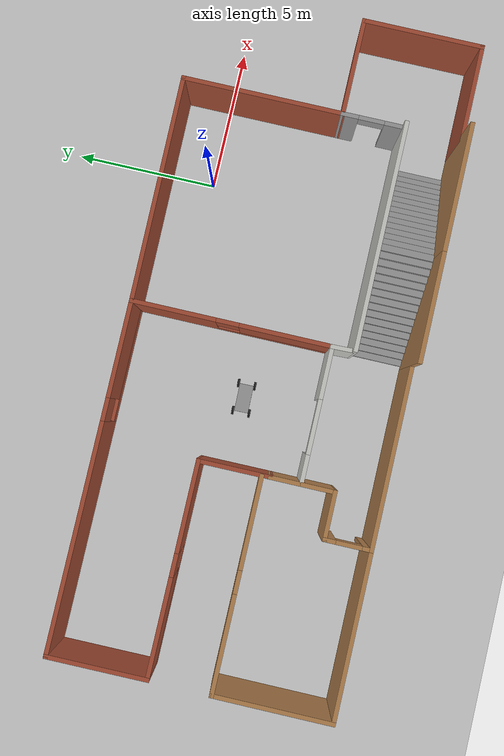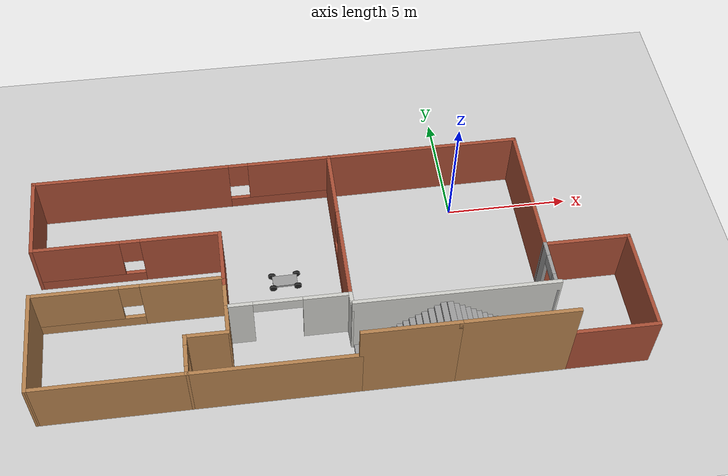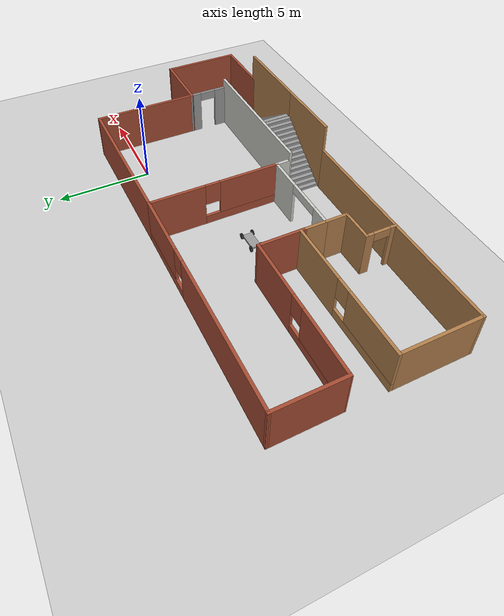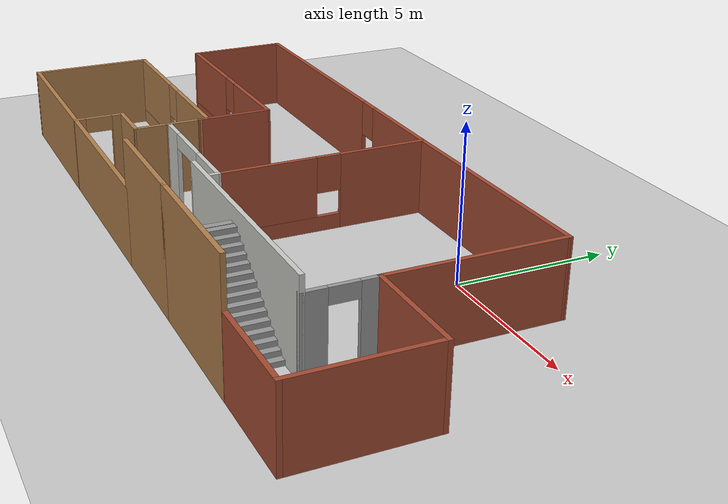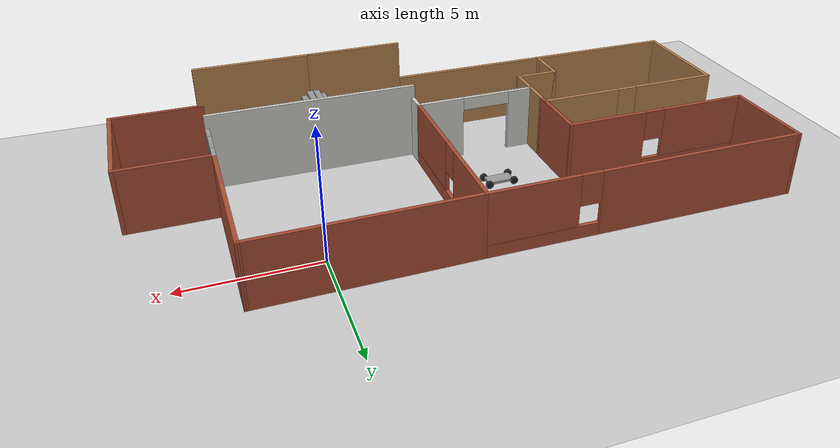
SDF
<sdf version="1.6">
 <world name="default">
  <model name="ground_plane">
   <static>1</static>
   <link name="link">
    <collision name="collision">
     <geometry><plane><normal>0 0 1</normal><size>100 100</size></plane></geometry>
     <surface>
      <contact><collide_bitmask>65535</collide_bitmask></contact>
      <friction><ode><mu>100</mu><mu2>50</mu2></ode></friction>
     </surface>
    </collision>
    <visual name="visual">
     <cast_shadows>0</cast_shadows>
     <geometry><plane><normal>0 0 1</normal><size>100 100</size></plane></geometry>
     <material>
      <script><uri>file://media/materials/scripts/gazebo.material</uri><name>Gazebo/Grey</name></script>
     </material>
    </visual>
   </link>
  </model>
  <model name="robot_house_space">
   <pose>-5.45028 -3.2823 0 0 -0 0</pose>
   <link name="Stairs_1">
    <visual name="Stairs_1_Visual_0">
     <pose>0.620829 -3.92142 0.083333 0 -0 1.5708</pose>
     <geometry><box><size>1.97481 0.231333 0.166667</size></box></geometry>
     <material>
      <script><uri>file://media/materials/scripts/gazebo.material</uri><name>Gazebo/Grey</name></script>
      <ambient>1 1 1 1</ambient>
     </material>
     <meta><layer>0</layer></meta>
    </visual>
    <collision name="Stairs_1_Collision_0">
     <geometry><box><size>1.97481 0.231333 0.166667</size></box></geometry>
     <pose>0.620829 -3.92142 0.083333 0 -0 1.5708</pose>
    </collision>
    <visual name="Stairs_1_Visual_1">
     <pose>0.852162 -3.92142 0.25 0 -0 1.5708</pose>
     <geometry><box><size>1.97481 0.231333 0.166667</size></box></geometry>
     <material>
      <script><uri>file://media/materials/scripts/gazebo.material</uri><name>Gazebo/Grey</name></script>
      <ambient>1 1 1 1</ambient>
     </material>
     <meta><layer>0</layer></meta>
    </visual>
    <collision name="Stairs_1_Collision_1">
     <geometry><box><size>1.97481 0.231333 0.166667</size></box></geometry>
     <pose>0.852162 -3.92142 0.25 0 -0 1.5708</pose>
    </collision>
    <visual name="Stairs_1_Visual_2">
     <pose>1.0835 -3.92142 0.416667 0 -0 1.5708</pose>
     <geometry><box><size>1.97481 0.231333 0.166667</size></box></geometry>
     <material>
      <script><uri>file://media/materials/scripts/gazebo.material</uri><name>Gazebo/Grey</name></script>
      <ambient>1 1 1 1</ambient>
     </material>
     <meta><layer>0</layer></meta>
    </visual>
    <collision name="Stairs_1_Collision_2">
     <geometry><box><size>1.97481 0.231333 0.166667</size></box></geometry>
     <pose>1.0835 -3.92142 0.416667 0 -0 1.5708</pose>
    </collision>
    <visual name="Stairs_1_Visual_3">
     <pose>1.31483 -3.92142 0.583333 0 -0 1.5708</pose>
     <geometry><box><size>1.97481 0.231333 0.166667</size></box></geometry>
     <material>
      <script><uri>file://media/materials/scripts/gazebo.material</uri><name>Gazebo/Grey</name></script>
      <ambient>1 1 1 1</ambient>
     </material>
     <meta><layer>0</layer></meta>
    </visual>
    <collision name="Stairs_1_Collision_3">
     <geometry><box><size>1.97481 0.231333 0.166667</size></box></geometry>
     <pose>1.31483 -3.92142 0.583333 0 -0 1.5708</pose>
    </collision>
    <visual name="Stairs_1_Visual_4">
     <pose>1.54616 -3.92142 0.75 0 -0 1.5708</pose>
     <geometry><box><size>1.97481 0.231333 0.166667</size></box></geometry>
     <material>
      <script><uri>file://media/materials/scripts/gazebo.material</uri><name>Gazebo/Grey</name></script>
      <ambient>1 1 1 1</ambient>
     </material>
     <meta><layer>0</layer></meta>
    </visual>
    <collision name="Stairs_1_Collision_4">
     <geometry><box><size>1.97481 0.231333 0.166667</size></box></geometry>
     <pose>1.54616 -3.92142 0.75 0 -0 1.5708</pose>
    </collision>
    <visual name="Stairs_1_Visual_5">
     <pose>1.7775 -3.92142 0.916667 0 -0 1.5708</pose>
     <geometry><box><size>1.97481 0.231333 0.166667</size></box></geometry>
     <material>
      <script><uri>file://media/materials/scripts/gazebo.material</uri><name>Gazebo/Grey</name></script>
      <ambient>1 1 1 1</ambient>
     </material>
     <meta><layer>0</layer></meta>
    </visual>
    <collision name="Stairs_1_Collision_5">
     <geometry><box><size>1.97481 0.231333 0.166667</size></box></geometry>
     <pose>1.7775 -3.92142 0.916667 0 -0 1.5708</pose>
    </collision>
    <visual name="Stairs_1_Visual_6">
     <pose>2.00883 -3.92142 1.08333 0 -0 1.5708</pose>
     <geometry><box><size>1.97481 0.231333 0.166667</size></box></geometry>
     <material>
      <script><uri>file://media/materials/scripts/gazebo.material</uri><name>Gazebo/Grey</name></script>
      <ambient>1 1 1 1</ambient>
     </material>
     <meta><layer>0</layer></meta>
    </visual>
    <collision name="Stairs_1_Collision_6">
     <geometry><box><size>1.97481 0.231333 0.166667</size></box></geometry>
     <pose>2.00883 -3.92142 1.08333 0 -0 1.5708</pose>
    </collision>
    <visual name="Stairs_1_Visual_7">
     <pose>2.24016 -3.92142 1.25 0 -0 1.5708</pose>
     <geometry><box><size>1.97481 0.231333 0.166667</size></box></geometry>
     <material>
      <script><uri>file://media/materials/scripts/gazebo.material</uri><name>Gazebo/Grey</name></script>
      <ambient>1 1 1 1</ambient>
     </material>
     <meta><layer>0</layer></meta>
    </visual>
    <collision name="Stairs_1_Collision_7">
     <geometry><box><size>1.97481 0.231333 0.166667</size></box></geometry>
     <pose>2.24016 -3.92142 1.25 0 -0 1.5708</pose>
    </collision>
    <visual name="Stairs_1_Visual_8">
     <pose>2.4715 -3.92142 1.41667 0 -0 1.5708</pose>
     <geometry><box><size>1.97481 0.231333 0.166667</size></box></geometry>
     <material>
      <script><uri>file://media/materials/scripts/gazebo.material</uri><name>Gazebo/Grey</name></script>
      <ambient>1 1 1 1</ambient>
     </material>
     <meta><layer>0</layer></meta>
    </visual>
    <collision name="Stairs_1_Collision_8">
     <geometry><box><size>1.97481 0.231333 0.166667</size></box></geometry>
     <pose>2.4715 -3.92142 1.41667 0 -0 1.5708</pose>
    </collision>
    <visual name="Stairs_1_Visual_9">
     <pose>2.70283 -3.92142 1.58333 0 -0 1.5708</pose>
     <geometry><box><size>1.97481 0.231333 0.166667</size></box></geometry>
     <material>
      <script><uri>file://media/materials/scripts/gazebo.material</uri><name>Gazebo/Grey</name></script>
      <ambient>1 1 1 1</ambient>
     </material>
     <meta><layer>0</layer></meta>
    </visual>
    <collision name="Stairs_1_Collision_9">
     <geometry><box><size>1.97481 0.231333 0.166667</size></box></geometry>
     <pose>2.70283 -3.92142 1.58333 0 -0 1.5708</pose>
    </collision>
    <visual name="Stairs_1_Visual_10">
     <pose>2.93416 -3.92142 1.75 0 -0 1.5708</pose>
     <geometry><box><size>1.97481 0.231333 0.166667</size></box></geometry>
     <material>
      <script><uri>file://media/materials/scripts/gazebo.material</uri><name>Gazebo/Grey</name></script>
      <ambient>1 1 1 1</ambient>
     </material>
     <meta><layer>0</layer></meta>
    </visual>
    <collision name="Stairs_1_Collision_10">
     <geometry><box><size>1.97481 0.231333 0.166667</size></box></geometry>
     <pose>2.93416 -3.92142 1.75 0 -0 1.5708</pose>
    </collision>
    <visual name="Stairs_1_Visual_11">
     <pose>3.1655 -3.92142 1.91667 0 -0 1.5708</pose>
     <geometry><box><size>1.97481 0.231333 0.166667</size></box></geometry>
     <material>
      <script><uri>file://media/materials/scripts/gazebo.material</uri><name>Gazebo/Grey</name></script>
      <ambient>1 1 1 1</ambient>
     </material>
     <meta><layer>0</layer></meta>
    </visual>
    <collision name="Stairs_1_Collision_11">
     <geometry><box><size>1.97481 0.231333 0.166667</size></box></geometry>
     <pose>3.1655 -3.92142 1.91667 0 -0 1.5708</pose>
    </collision>
    <visual name="Stairs_1_Visual_12">
     <pose>3.39683 -3.92142 2.08333 0 -0 1.5708</pose>
     <geometry><box><size>1.97481 0.231333 0.166667</size></box></geometry>
     <material>
      <script><uri>file://media/materials/scripts/gazebo.material</uri><name>Gazebo/Grey</name></script>
      <ambient>1 1 1 1</ambient>
     </material>
     <meta><layer>0</layer></meta>
    </visual>
    <collision name="Stairs_1_Collision_12">
     <geometry><box><size>1.97481 0.231333 0.166667</size></box></geometry>
     <pose>3.39683 -3.92142 2.08333 0 -0 1.5708</pose>
    </collision>
    <visual name="Stairs_1_Visual_13">
     <pose>3.62816 -3.92142 2.25 0 -0 1.5708</pose>
     <geometry><box><size>1.97481 0.231333 0.166667</size></box></geometry>
     <material>
      <script><uri>file://media/materials/scripts/gazebo.material</uri><name>Gazebo/Grey</name></script>
      <ambient>1 1 1 1</ambient>
     </material>
     <meta><layer>0</layer></meta>
    </visual>
    <collision name="Stairs_1_Collision_13">
     <geometry><box><size>1.97481 0.231333 0.166667</size></box></geometry>
     <pose>3.62816 -3.92142 2.25 0 -0 1.5708</pose>
    </collision>
    <visual name="Stairs_1_Visual_14">
     <pose>3.8595 -3.92142 2.41667 0 -0 1.5708</pose>
     <geometry><box><size>1.97481 0.231333 0.166667</size></box></geometry>
     <material>
      <script><uri>file://media/materials/scripts/gazebo.material</uri><name>Gazebo/Grey</name></script>
      <ambient>1 1 1 1</ambient>
     </material>
     <meta><layer>0</layer></meta>
    </visual>
    <collision name="Stairs_1_Collision_14">
     <geometry><box><size>1.97481 0.231333 0.166667</size></box></geometry>
     <pose>3.8595 -3.92142 2.41667 0 -0 1.5708</pose>
    </collision>
   </link>
   <link name="Stairs_2">
    <visual name="Stairs_2_Visual_0">
     <pose>7.38463 -3.89067 0.083333 0 -0 -1.5708</pose>
     <geometry><box><size>1.8856 0.233333 0.166667</size></box></geometry>
     <material>
      <script><uri>file://media/materials/scripts/gazebo.material</uri><name>Gazebo/Grey</name></script>
      <ambient>1 1 1 1</ambient>
     </material>
     <meta><layer>0</layer></meta>
    </visual>
    <collision name="Stairs_2_Collision_0">
     <geometry><box><size>1.8856 0.233333 0.166667</size></box></geometry>
     <pose>7.38463 -3.89067 0.083333 0 -0 -1.5708</pose>
    </collision>
    <visual name="Stairs_2_Visual_1">
     <pose>7.15129 -3.89067 0.25 0 -0 -1.5708</pose>
     <geometry><box><size>1.8856 0.233333 0.166667</size></box></geometry>
     <material>
      <script><uri>file://media/materials/scripts/gazebo.material</uri><name>Gazebo/Grey</name></script>
      <ambient>1 1 1 1</ambient>
     </material>
     <meta><layer>0</layer></meta>
    </visual>
    <collision name="Stairs_2_Collision_1">
     <geometry><box><size>1.8856 0.233333 0.166667</size></box></geometry>
     <pose>7.15129 -3.89067 0.25 0 -0 -1.5708</pose>
    </collision>
    <visual name="Stairs_2_Visual_2">
     <pose>6.91796 -3.89067 0.416667 0 -0 -1.5708</pose>
     <geometry><box><size>1.8856 0.233333 0.166667</size></box></geometry>
     <material>
      <script><uri>file://media/materials/scripts/gazebo.material</uri><name>Gazebo/Grey</name></script>
      <ambient>1 1 1 1</ambient>
     </material>
     <meta><layer>0</layer></meta>
    </visual>
    <collision name="Stairs_2_Collision_2">
     <geometry><box><size>1.8856 0.233333 0.166667</size></box></geometry>
     <pose>6.91796 -3.89067 0.416667 0 -0 -1.5708</pose>
    </collision>
    <visual name="Stairs_2_Visual_3">
     <pose>6.68463 -3.89067 0.583333 0 -0 -1.5708</pose>
     <geometry><box><size>1.8856 0.233333 0.166667</size></box></geometry>
     <material>
      <script><uri>file://media/materials/scripts/gazebo.material</uri><name>Gazebo/Grey</name></script>
      <ambient>1 1 1 1</ambient>
     </material>
     <meta><layer>0</layer></meta>
    </visual>
    <collision name="Stairs_2_Collision_3">
     <geometry><box><size>1.8856 0.233333 0.166667</size></box></geometry>
     <pose>6.68463 -3.89067 0.583333 0 -0 -1.5708</pose>
    </collision>
    <visual name="Stairs_2_Visual_4">
     <pose>6.45129 -3.89067 0.75 0 -0 -1.5708</pose>
     <geometry><box><size>1.8856 0.233333 0.166667</size></box></geometry>
     <material>
      <script><uri>file://media/materials/scripts/gazebo.material</uri><name>Gazebo/Grey</name></script>
      <ambient>1 1 1 1</ambient>
     </material>
     <meta><layer>0</layer></meta>
    </visual>
    <collision name="Stairs_2_Collision_4">
     <geometry><box><size>1.8856 0.233333 0.166667</size></box></geometry>
     <pose>6.45129 -3.89067 0.75 0 -0 -1.5708</pose>
    </collision>
    <visual name="Stairs_2_Visual_5">
     <pose>6.21796 -3.89067 0.916667 0 -0 -1.5708</pose>
     <geometry><box><size>1.8856 0.233333 0.166667</size></box></geometry>
     <material>
      <script><uri>file://media/materials/scripts/gazebo.material</uri><name>Gazebo/Grey</name></script>
      <ambient>1 1 1 1</ambient>
     </material>
     <meta><layer>0</layer></meta>
    </visual>
    <collision name="Stairs_2_Collision_5">
     <geometry><box><size>1.8856 0.233333 0.166667</size></box></geometry>
     <pose>6.21796 -3.89067 0.916667 0 -0 -1.5708</pose>
    </collision>
    <visual name="Stairs_2_Visual_6">
     <pose>5.98463 -3.89067 1.08333 0 -0 -1.5708</pose>
     <geometry><box><size>1.8856 0.233333 0.166667</size></box></geometry>
     <material>
      <script><uri>file://media/materials/scripts/gazebo.material</uri><name>Gazebo/Grey</name></script>
      <ambient>1 1 1 1</ambient>
     </material>
     <meta><layer>0</layer></meta>
    </visual>
    <collision name="Stairs_2_Collision_6">
     <geometry><box><size>1.8856 0.233333 0.166667</size></box></geometry>
     <pose>5.98463 -3.89067 1.08333 0 -0 -1.5708</pose>
    </collision>
    <visual name="Stairs_2_Visual_7">
     <pose>5.75129 -3.89067 1.25 0 -0 -1.5708</pose>
     <geometry><box><size>1.8856 0.233333 0.166667</size></box></geometry>
     <material>
      <script><uri>file://media/materials/scripts/gazebo.material</uri><name>Gazebo/Grey</name></script>
      <ambient>1 1 1 1</ambient>
     </material>
     <meta><layer>0</layer></meta>
    </visual>
    <collision name="Stairs_2_Collision_7">
     <geometry><box><size>1.8856 0.233333 0.166667</size></box></geometry>
     <pose>5.75129 -3.89067 1.25 0 -0 -1.5708</pose>
    </collision>
    <visual name="Stairs_2_Visual_8">
     <pose>5.51796 -3.89067 1.41667 0 -0 -1.5708</pose>
     <geometry><box><size>1.8856 0.233333 0.166667</size></box></geometry>
     <material>
      <script><uri>file://media/materials/scripts/gazebo.material</uri><name>Gazebo/Grey</name></script>
      <ambient>1 1 1 1</ambient>
     </material>
     <meta><layer>0</layer></meta>
    </visual>
    <collision name="Stairs_2_Collision_8">
     <geometry><box><size>1.8856 0.233333 0.166667</size></box></geometry>
     <pose>5.51796 -3.89067 1.41667 0 -0 -1.5708</pose>
    </collision>
    <visual name="Stairs_2_Visual_9">
     <pose>5.28463 -3.89067 1.58333 0 -0 -1.5708</pose>
     <geometry><box><size>1.8856 0.233333 0.166667</size></box></geometry>
     <material>
      <script><uri>file://media/materials/scripts/gazebo.material</uri><name>Gazebo/Grey</name></script>
      <ambient>1 1 1 1</ambient>
     </material>
     <meta><layer>0</layer></meta>
    </visual>
    <collision name="Stairs_2_Collision_9">
     <geometry><box><size>1.8856 0.233333 0.166667</size></box></geometry>
     <pose>5.28463 -3.89067 1.58333 0 -0 -1.5708</pose>
    </collision>
    <visual name="Stairs_2_Visual_10">
     <pose>5.05129 -3.89067 1.75 0 -0 -1.5708</pose>
     <geometry><box><size>1.8856 0.233333 0.166667</size></box></geometry>
     <material>
      <script><uri>file://media/materials/scripts/gazebo.material</uri><name>Gazebo/Grey</name></script>
      <ambient>1 1 1 1</ambient>
     </material>
     <meta><layer>0</layer></meta>
    </visual>
    <collision name="Stairs_2_Collision_10">
     <geometry><box><size>1.8856 0.233333 0.166667</size></box></geometry>
     <pose>5.05129 -3.89067 1.75 0 -0 -1.5708</pose>
    </collision>
    <visual name="Stairs_2_Visual_11">
     <pose>4.81796 -3.89067 1.91667 0 -0 -1.5708</pose>
     <geometry><box><size>1.8856 0.233333 0.166667</size></box></geometry>
     <material>
      <script><uri>file://media/materials/scripts/gazebo.material</uri><name>Gazebo/Grey</name></script>
      <ambient>1 1 1 1</ambient>
     </material>
     <meta><layer>0</layer></meta>
    </visual>
    <collision name="Stairs_2_Collision_11">
     <geometry><box><size>1.8856 0.233333 0.166667</size></box></geometry>
     <pose>4.81796 -3.89067 1.91667 0 -0 -1.5708</pose>
    </collision>
    <visual name="Stairs_2_Visual_12">
     <pose>4.58463 -3.89067 2.08333 0 -0 -1.5708</pose>
     <geometry><box><size>1.8856 0.233333 0.166667</size></box></geometry>
     <material>
      <script><uri>file://media/materials/scripts/gazebo.material</uri><name>Gazebo/Grey</name></script>
      <ambient>1 1 1 1</ambient>
     </material>
     <meta><layer>0</layer></meta>
    </visual>
    <collision name="Stairs_2_Collision_12">
     <geometry><box><size>1.8856 0.233333 0.166667</size></box></geometry>
     <pose>4.58463 -3.89067 2.08333 0 -0 -1.5708</pose>
    </collision>
    <visual name="Stairs_2_Visual_13">
     <pose>4.35129 -3.89067 2.25 0 -0 -1.5708</pose>
     <geometry><box><size>1.8856 0.233333 0.166667</size></box></geometry>
     <material>
      <script><uri>file://media/materials/scripts/gazebo.material</uri><name>Gazebo/Grey</name></script>
      <ambient>1 1 1 1</ambient>
     </material>
     <meta><layer>0</layer></meta>
    </visual>
    <collision name="Stairs_2_Collision_13">
     <geometry><box><size>1.8856 0.233333 0.166667</size></box></geometry>
     <pose>4.35129 -3.89067 2.25 0 -0 -1.5708</pose>
    </collision>
    <visual name="Stairs_2_Visual_14">
     <pose>4.11796 -3.89067 2.41667 0 -0 -1.5708</pose>
     <geometry><box><size>1.8856 0.233333 0.166667</size></box></geometry>
     <material>
      <script><uri>file://media/materials/scripts/gazebo.material</uri><name>Gazebo/Grey</name></script>
      <ambient>1 1 1 1</ambient>
     </material>
     <meta><layer>0</layer></meta>
    </visual>
    <collision name="Stairs_2_Collision_14">
     <geometry><box><size>1.8856 0.233333 0.166667</size></box></geometry>
     <pose>4.11796 -3.89067 2.41667 0 -0 -1.5708</pose>
    </collision>
   </link>
   <link name="Wall_31">
    <collision name="Wall_31_Collision">
     <geometry><box><size>2.61436 0.15 2.5</size></box></geometry>
     <pose>0 0 1.25 0 -0 0</pose>
    </collision>
    <visual name="Wall_31_Visual">
     <pose>0 0 1.25 0 -0 0</pose>
     <geometry><box><size>2.61436 0.15 2.5</size></box></geometry>
     <material>
      <script><uri>file://media/materials/scripts/gazebo.material</uri><name>Gazebo/Bricks</name></script>
      <ambient>1 1 1 1</ambient>
     </material>
     <meta><layer>0</layer></meta>
    </visual>
    <pose>-4.28923 0.164965 0 0 -0 1.57401</pose>
   </link>
   <link name="Wall_32">
    <pose>-7.96819 1.397 0 0 -0 3.14159</pose>
    <visual name="Wall_32_Visual_0">
     <pose>-2.14641 0 1.25 0 -0 0</pose>
     <geometry><box><size>3.20718 0.15 2.5</size></box></geometry>
     <material>
      <script><uri>file://media/materials/scripts/gazebo.material</uri><name>Gazebo/Bricks</name></script>
      <ambient>1 1 1 1</ambient>
     </material>
     <meta><layer>0</layer></meta>
    </visual>
    <collision name="Wall_32_Collision_0">
     <geometry><box><size>3.20718 0.15 2.5</size></box></geometry>
     <pose>-2.14641 0 1.25 0 -0 0</pose>
    </collision>
    <visual name="Wall_32_Visual_1">
     <pose>1.60359 0 0.25 0 -0 0</pose>
     <geometry><box><size>4.29282 0.15 0.5</size></box></geometry>
     <material>
      <script><uri>file://media/materials/scripts/gazebo.material</uri><name>Gazebo/Bricks</name></script>
      <ambient>1 1 1 1</ambient>
     </material>
     <meta><layer>0</layer></meta>
    </visual>
    <collision name="Wall_32_Collision_1">
     <geometry><box><size>4.29282 0.15 0.5</size></box></geometry>
     <pose>1.60359 0 0.25 0 -0 0</pose>
    </collision>
    <visual name="Wall_32_Visual_2">
     <pose>2.00359 0 1.5 0 -0 0</pose>
     <geometry><box><size>3.49282 0.15 2</size></box></geometry>
     <material>
      <script><uri>file://media/materials/scripts/gazebo.material</uri><name>Gazebo/Bricks</name></script>
      <ambient>1 1 1 1</ambient>
     </material>
     <meta><layer>0</layer></meta>
    </visual>
    <collision name="Wall_32_Collision_2">
     <geometry><box><size>3.49282 0.15 2</size></box></geometry>
     <pose>2.00359 0 1.5 0 -0 0</pose>
    </collision>
    <visual name="Wall_32_Visual_3">
     <pose>-0.142822 0 1.9 0 -0 0</pose>
     <geometry><box><size>0.8 0.15 1.2</size></box></geometry>
     <material>
      <script><uri>file://media/materials/scripts/gazebo.material</uri><name>Gazebo/Bricks</name></script>
      <ambient>1 1 1 1</ambient>
     </material>
     <meta><layer>0</layer></meta>
    </visual>
    <collision name="Wall_32_Collision_3">
     <geometry><box><size>0.8 0.15 1.2</size></box></geometry>
     <pose>-0.142822 0 1.9 0 -0 0</pose>
    </collision>
   </link>
   <link name="Wall_33">
    <collision name="Wall_33_Collision">
     <geometry><box><size>3.58039 0.15 2.5</size></box></geometry>
     <pose>0 0 1.25 0 -0 0</pose>
    </collision>
    <visual name="Wall_33_Visual">
     <pose>0 0 1.25 0 -0 0</pose>
     <geometry><box><size>3.58039 0.15 2.5</size></box></geometry>
     <material>
      <script><uri>file://media/materials/scripts/gazebo.material</uri><name>Gazebo/Bricks</name></script>
      <ambient>1 1 1 1</ambient>
     </material>
     <meta><layer>0</layer></meta>
    </visual>
    <pose>-11.6508 3.11192 0 0 -0 1.57523</pose>
   </link>
   <link name="Wall_34">
    <pose>-5.6084 4.82685 0 0 -0 0</pose>
    <visual name="Wall_34_Visual_0">
     <pose>-2.11826 0 1.25 0 -0 0</pose>
     <geometry><box><size>8.01347 0.15 2.5</size></box></geometry>
     <material>
      <script><uri>file://media/materials/scripts/gazebo.material</uri><name>Gazebo/Bricks</name></script>
      <ambient>1 1 1 1</ambient>
     </material>
     <meta><layer>0</layer></meta>
    </visual>
    <collision name="Wall_34_Collision_0">
     <geometry><box><size>8.01347 0.15 2.5</size></box></geometry>
     <pose>-2.11826 0 1.25 0 -0 0</pose>
    </collision>
    <visual name="Wall_34_Visual_1">
     <pose>4.00674 0 0.25 0 -0 0</pose>
     <geometry><box><size>4.23653 0.15 0.5</size></box></geometry>
     <material>
      <script><uri>file://media/materials/scripts/gazebo.material</uri><name>Gazebo/Bricks</name></script>
      <ambient>1 1 1 1</ambient>
     </material>
     <meta><layer>0</layer></meta>
    </visual>
    <collision name="Wall_34_Collision_1">
     <geometry><box><size>4.23653 0.15 0.5</size></box></geometry>
     <pose>4.00674 0 0.25 0 -0 0</pose>
    </collision>
    <visual name="Wall_34_Visual_2">
     <pose>4.40674 0 1.5 0 -0 0</pose>
     <geometry><box><size>3.43653 0.15 2</size></box></geometry>
     <material>
      <script><uri>file://media/materials/scripts/gazebo.material</uri><name>Gazebo/Bricks</name></script>
      <ambient>1 1 1 1</ambient>
     </material>
     <meta><layer>0</layer></meta>
    </visual>
    <collision name="Wall_34_Collision_2">
     <geometry><box><size>3.43653 0.15 2</size></box></geometry>
     <pose>4.40674 0 1.5 0 -0 0</pose>
    </collision>
    <visual name="Wall_34_Visual_3">
     <pose>2.28847 0 1.9 0 -0 0</pose>
     <geometry><box><size>0.8 0.15 1.2</size></box></geometry>
     <material>
      <script><uri>file://media/materials/scripts/gazebo.material</uri><name>Gazebo/Bricks</name></script>
      <ambient>1 1 1 1</ambient>
     </material>
     <meta><layer>0</layer></meta>
    </visual>
    <collision name="Wall_34_Collision_3">
     <geometry><box><size>0.8 0.15 1.2</size></box></geometry>
     <pose>2.28847 0 1.9 0 -0 0</pose>
    </collision>
   </link>
   <link name="Wall_35">
    <pose>0.441602 1.35115 0 0 -0 -1.5708</pose>
    <visual name="Wall_35_Visual_0">
     <pose>-2.0495 0 1.25 0 -0 0</pose>
     <geometry><box><size>3.00239 0.15 2.5</size></box></geometry>
     <material>
      <script><uri>file://media/materials/scripts/gazebo.material</uri><name>Gazebo/Bricks</name></script>
      <ambient>0.760784 0.662745 0.627451 1</ambient>
     </material>
     <meta><layer>0</layer></meta>
    </visual>
    <collision name="Wall_35_Collision_0">
     <geometry><box><size>3.00239 0.15 2.5</size></box></geometry>
     <pose>-2.0495 0 1.25 0 -0 0</pose>
    </collision>
    <visual name="Wall_35_Visual_1">
     <pose>1.50119 0 0.25 0 -0 0</pose>
     <geometry><box><size>4.09901 0.15 0.5</size></box></geometry>
     <material>
      <script><uri>file://media/materials/scripts/gazebo.material</uri><name>Gazebo/Bricks</name></script>
      <ambient>0.760784 0.662745 0.627451 1</ambient>
     </material>
     <meta><layer>0</layer></meta>
    </visual>
    <collision name="Wall_35_Collision_1">
     <geometry><box><size>4.09901 0.15 0.5</size></box></geometry>
     <pose>1.50119 0 0.25 0 -0 0</pose>
    </collision>
    <visual name="Wall_35_Visual_2">
     <pose>1.90119 0 1.5 0 -0 0</pose>
     <geometry><box><size>3.29901 0.15 2</size></box></geometry>
     <material>
      <script><uri>file://media/materials/scripts/gazebo.material</uri><name>Gazebo/Bricks</name></script>
      <ambient>0.760784 0.662745 0.627451 1</ambient>
     </material>
     <meta><layer>0</layer></meta>
    </visual>
    <collision name="Wall_35_Collision_2">
     <geometry><box><size>3.29901 0.15 2</size></box></geometry>
     <pose>1.90119 0 1.5 0 -0 0</pose>
    </collision>
    <visual name="Wall_35_Visual_3">
     <pose>-0.148309 0 1.9 0 -0 0</pose>
     <geometry><box><size>0.8 0.15 1.2</size></box></geometry>
     <material>
      <script><uri>file://media/materials/scripts/gazebo.material</uri><name>Gazebo/Bricks</name></script>
      <ambient>0.760784 0.662745 0.627451 1</ambient>
     </material>
     <meta><layer>0</layer></meta>
    </visual>
    <collision name="Wall_35_Collision_3">
     <geometry><box><size>0.8 0.15 1.2</size></box></geometry>
     <pose>-0.148309 0 1.9 0 -0 0</pose>
    </collision>
   </link>
   <link name="Wall_39">
    <collision name="Wall_39_Collision">
     <geometry><box><size>1.25 0.15 2.5</size></box></geometry>
     <pose>0 0 1.25 0 -0 0</pose>
    </collision>
    <visual name="Wall_39_Visual">
     <pose>0 0 1.25 0 -0 0</pose>
     <geometry><box><size>1.25 0.15 2.5</size></box></geometry>
     <material>
      <script><uri>file://media/materials/scripts/gazebo.material</uri><name>Gazebo/Wood</name></script>
      <ambient>1 1 1 1</ambient>
     </material>
     <meta><layer>0</layer></meta>
    </visual>
    <pose>-4.28527 -1.61707 0 0 -0 -1.5708</pose>
   </link>
   <link name="Wall_41">
    <pose>-1.8584 -2.12455 0 0 -0 3.14159</pose>
    <visual name="Wall_41_Visual_0">
     <pose>-1.42904 0 1.25 0 -0 0</pose>
     <geometry><box><size>1.89192 0.15 2.5</size></box></geometry>
     <material>
      <script><uri>file://media/materials/scripts/gazebo.material</uri><name>Gazebo/CeilingTiled</name></script>
      <ambient>1 1 1 1</ambient>
     </material>
     <meta><layer>0</layer></meta>
    </visual>
    <collision name="Wall_41_Collision_0">
     <geometry><box><size>1.89192 0.15 2.5</size></box></geometry>
     <pose>-1.42904 0 1.25 0 -0 0</pose>
    </collision>
    <visual name="Wall_41_Visual_1">
     <pose>1.89596 0 1.25 0 -0 0</pose>
     <geometry><box><size>0.958083 0.15 2.5</size></box></geometry>
     <material>
      <script><uri>file://media/materials/scripts/gazebo.material</uri><name>Gazebo/CeilingTiled</name></script>
      <ambient>1 1 1 1</ambient>
     </material>
     <meta><layer>0</layer></meta>
    </visual>
    <collision name="Wall_41_Collision_1">
     <geometry><box><size>0.958083 0.15 2.5</size></box></geometry>
     <pose>1.89596 0 1.25 0 -0 0</pose>
    </collision>
    <visual name="Wall_41_Visual_2">
     <pose>0.466917 0 2.25 0 -0 0</pose>
     <geometry><box><size>1.9 0.15 0.5</size></box></geometry>
     <material>
      <script><uri>file://media/materials/scripts/gazebo.material</uri><name>Gazebo/CeilingTiled</name></script>
      <ambient>1 1 1 1</ambient>
     </material>
     <meta><layer>0</layer></meta>
    </visual>
    <collision name="Wall_41_Collision_2">
     <geometry><box><size>1.9 0.15 0.5</size></box></geometry>
     <pose>0.466917 0 2.25 0 -0 0</pose>
    </collision>
   </link>
   <link name="Wall_45">
    <collision name="Wall_45_Collision">
     <geometry><box><size>6.5 0.15 2.5</size></box></geometry>
     <pose>0 0 1.25 0 -0 0</pose>
    </collision>
    <visual name="Wall_45_Visual">
     <pose>0 0 1.25 0 -0 0</pose>
     <geometry><box><size>6.5 0.15 2.5</size></box></geometry>
     <material>
      <script><uri>file://media/materials/scripts/gazebo.material</uri><name>Gazebo/Wood</name></script>
      <ambient>1 0.764706 0.305882 1</ambient>
     </material>
     <meta><layer>0</layer></meta>
    </visual>
    <pose>-2.71107 -4.8807 0 0 -0 3.14157</pose>
   </link>
   <link name="Wall_46">
    <pose>-5.88582 -4.08064 0 0 -0 1.5708</pose>
    <visual name="Wall_46_Visual_0">
     <pose>-0.676797 0 1.25 0 -0 0</pose>
     <geometry><box><size>0.396406 0.15 2.5</size></box></geometry>
     <material>
      <script><uri>file://media/materials/scripts/gazebo.material</uri><name>Gazebo/Wood</name></script>
      <ambient>1 1 1 1</ambient>
     </material>
     <meta><layer>0</layer></meta>
    </visual>
    <collision name="Wall_46_Collision_0">
     <geometry><box><size>0.396406 0.15 2.5</size></box></geometry>
     <pose>-0.676797 0 1.25 0 -0 0</pose>
    </collision>
    <visual name="Wall_46_Visual_1">
     <pose>0.648203 0 1.25 0 -0 0</pose>
     <geometry><box><size>0.453594 0.15 2.5</size></box></geometry>
     <material>
      <script><uri>file://media/materials/scripts/gazebo.material</uri><name>Gazebo/Wood</name></script>
      <ambient>1 1 1 1</ambient>
     </material>
     <meta><layer>0</layer></meta>
    </visual>
    <collision name="Wall_46_Collision_1">
     <geometry><box><size>0.453594 0.15 2.5</size></box></geometry>
     <pose>0.648203 0 1.25 0 -0 0</pose>
    </collision>
    <visual name="Wall_46_Visual_2">
     <pose>-0.028594 0 2.25 0 -0 0</pose>
     <geometry><box><size>0.9 0.15 0.5</size></box></geometry>
     <material>
      <script><uri>file://media/materials/scripts/gazebo.material</uri><name>Gazebo/Wood</name></script>
      <ambient>1 1 1 1</ambient>
     </material>
     <meta><layer>0</layer></meta>
    </visual>
    <collision name="Wall_46_Collision_2">
     <geometry><box><size>0.9 0.15 0.5</size></box></geometry>
     <pose>-0.028594 0 2.25 0 -0 0</pose>
    </collision>
   </link>
   <link name="Wall_47">
    <collision name="Wall_47_Collision">
     <geometry><box><size>1.75 0.15 2.5</size></box></geometry>
     <pose>0 0 1.25 0 -0 0</pose>
    </collision>
    <visual name="Wall_47_Visual">
     <pose>0 0 1.25 0 -0 0</pose>
     <geometry><box><size>1.75 0.15 2.5</size></box></geometry>
     <material>
      <script><uri>file://media/materials/scripts/gazebo.material</uri><name>Gazebo/Wood</name></script>
      <ambient>1 1 1 1</ambient>
     </material>
     <meta><layer>0</layer></meta>
    </visual>
    <pose>-5.08582 -3.28064 0 0 -0 0</pose>
   </link>
   <link name="Wall_48">
    <collision name="Wall_48_Collision">
     <geometry><box><size>1.26357 0.15 2.5</size></box></geometry>
     <pose>0 0 1.25 0 -0 0</pose>
    </collision>
    <visual name="Wall_48_Visual">
     <pose>0 0 1.25 0 -0 0</pose>
     <geometry><box><size>1.26357 0.15 2.5</size></box></geometry>
     <material>
      <script><uri>file://media/materials/scripts/gazebo.material</uri><name>Gazebo/Wood</name></script>
      <ambient>1 1 1 1</ambient>
     </material>
     <meta><layer>0</layer></meta>
    </visual>
    <pose>-4.28554 -2.72385 0 0 -0 1.5703</pose>
   </link>
   <link name="Wall_50">
    <pose>-7.9864 -0.781344 0 0 -0 3.14159</pose>
    <visual name="Wall_50_Visual_0">
     <pose>-2.12429 0 1.25 0 -0 0</pose>
     <geometry><box><size>3.25142 0.15 2.5</size></box></geometry>
     <material>
      <script><uri>file://media/materials/scripts/gazebo.material</uri><name>Gazebo/Wood</name></script>
      <ambient>1 1 1 1</ambient>
     </material>
     <meta><layer>0</layer></meta>
    </visual>
    <collision name="Wall_50_Collision_0">
     <geometry><box><size>3.25142 0.15 2.5</size></box></geometry>
     <pose>-2.12429 0 1.25 0 -0 0</pose>
    </collision>
    <visual name="Wall_50_Visual_1">
     <pose>1.62571 0 0.25 0 -0 0</pose>
     <geometry><box><size>4.24858 0.15 0.5</size></box></geometry>
     <material>
      <script><uri>file://media/materials/scripts/gazebo.material</uri><name>Gazebo/Wood</name></script>
      <ambient>1 1 1 1</ambient>
     </material>
     <meta><layer>0</layer></meta>
    </visual>
    <collision name="Wall_50_Collision_1">
     <geometry><box><size>4.24858 0.15 0.5</size></box></geometry>
     <pose>1.62571 0 0.25 0 -0 0</pose>
    </collision>
    <visual name="Wall_50_Visual_2">
     <pose>2.02571 0 1.5 0 -0 0</pose>
     <geometry><box><size>3.44858 0.15 2</size></box></geometry>
     <material>
      <script><uri>file://media/materials/scripts/gazebo.material</uri><name>Gazebo/Wood</name></script>
      <ambient>1 1 1 1</ambient>
     </material>
     <meta><layer>0</layer></meta>
    </visual>
    <collision name="Wall_50_Collision_2">
     <geometry><box><size>3.44858 0.15 2</size></box></geometry>
     <pose>2.02571 0 1.5 0 -0 0</pose>
    </collision>
    <visual name="Wall_50_Visual_3">
     <pose>-0.098582 0 1.9 0 -0 0</pose>
     <geometry><box><size>0.8 0.15 1.2</size></box></geometry>
     <material>
      <script><uri>file://media/materials/scripts/gazebo.material</uri><name>Gazebo/Wood</name></script>
      <ambient>1 1 1 1</ambient>
     </material>
     <meta><layer>0</layer></meta>
    </visual>
    <collision name="Wall_50_Collision_3">
     <geometry><box><size>0.8 0.15 1.2</size></box></geometry>
     <pose>-0.098582 0 1.9 0 -0 0</pose>
    </collision>
   </link>
   <link name="Wall_51">
    <collision name="Wall_51_Collision">
     <geometry><box><size>4.25 0.15 2.5</size></box></geometry>
     <pose>0 0 1.25 0 -0 0</pose>
    </collision>
    <visual name="Wall_51_Visual">
     <pose>0 0 1.25 0 -0 0</pose>
     <geometry><box><size>4.25 0.15 2.5</size></box></geometry>
     <material>
      <script><uri>file://media/materials/scripts/gazebo.material</uri><name>Gazebo/Wood</name></script>
      <ambient>1 1 1 1</ambient>
     </material>
     <meta><layer>0</layer></meta>
    </visual>
    <pose>-11.6614 -2.83134 0 0 -0 -1.5708</pose>
   </link>
   <link name="Wall_52">
    <collision name="Wall_52_Collision">
     <geometry><box><size>5.92561 0.15 2.5</size></box></geometry>
     <pose>0 0 1.25 0 -0 0</pose>
    </collision>
    <visual name="Wall_52_Visual">
     <pose>0 0 1.25 0 -0 0</pose>
     <geometry><box><size>5.92561 0.15 2.5</size></box></geometry>
     <material>
      <script><uri>file://media/materials/scripts/gazebo.material</uri><name>Gazebo/Wood</name></script>
      <ambient>1 0.764706 0.305882 1</ambient>
     </material>
     <meta><layer>0</layer></meta>
    </visual>
    <pose>-8.77361 -4.88099 0 0 -0 0.000122</pose>
   </link>
   <link name="Wall_55">
    <collision name="Wall_55_Collision">
     <geometry><box><size>3.72131 0.15 4</size></box></geometry>
     <pose>0 0 2 0 -0 0</pose>
    </collision>
    <visual name="Wall_55_Visual">
     <pose>0 0 2 0 -0 0</pose>
     <geometry><box><size>3.72131 0.15 4</size></box></geometry>
     <material>
      <script><uri>file://media/materials/scripts/gazebo.material</uri><name>Gazebo/Wood</name></script>
      <ambient>1 1 1 1</ambient>
     </material>
     <meta><layer>0</layer></meta>
    </visual>
    <pose>2.24969 -4.88076 0 0 -0 0</pose>
   </link>
   <link name="Wall_56">
    <collision name="Wall_56_Collision">
     <geometry><box><size>4.5 0.15 4</size></box></geometry>
     <pose>0 0 2 0 -0 0</pose>
    </collision>
    <visual name="Wall_56_Visual">
     <pose>0 0 2 0 -0 0</pose>
     <geometry><box><size>4.5 0.15 4</size></box></geometry>
     <material>
      <script><uri>file://media/materials/scripts/gazebo.material</uri><name>Gazebo/Wood</name></script>
      <ambient>1 1 1 1</ambient>
     </material>
     <meta><layer>0</layer></meta>
    </visual>
    <pose>6.21069 -4.88076 0 0 -0 0</pose>
   </link>
   <link name="Wall_59">
    <collision name="Wall_59_Collision">
     <geometry><box><size>8 0.15 3</size></box></geometry>
     <pose>0 0 1.5 0 -0 0</pose>
    </collision>
    <visual name="Wall_59_Visual">
     <pose>0 0 1.5 0 -0 0</pose>
     <geometry><box><size>8 0.15 3</size></box></geometry>
     <material>
      <script><uri>file://media/materials/scripts/gazebo.material</uri><name>Gazebo/CeilingTiled</name></script>
      <ambient>1 1 1 1</ambient>
     </material>
     <meta><layer>0</layer></meta>
    </visual>
    <pose>4.38669 -2.87716 0 0 -0 0</pose>
   </link>
   <link name="Wall_61">
    <collision name="Wall_61_Collision">
     <geometry><box><size>0.90288 0.15 2.5</size></box></geometry>
     <pose>0 0 1.25 0 -0 0</pose>
    </collision>
    <visual name="Wall_61_Visual">
     <pose>0 0 1.25 0 -0 0</pose>
     <geometry><box><size>0.90288 0.15 2.5</size></box></geometry>
     <material>
      <script><uri>file://media/materials/scripts/gazebo.material</uri><name>Gazebo/CeilingTiled</name></script>
      <ambient>1 1 1 1</ambient>
     </material>
     <meta><layer>0</layer></meta>
    </visual>
    <pose>0.451646 -2.50085 0 0 -0 -1.54411</pose>
   </link>
   <link name="Wall_63">
    <pose>8.31156 -1.79816 0 0 -0 1.57092</pose>
    <visual name="Wall_63_Visual_0">
     <pose>-0.764558 0 1.25 0 -0 0</pose>
     <geometry><box><size>0.778882 0.15 2.5</size></box></geometry>
     <material>
      <script><uri>file://media/materials/scripts/gazebo.material</uri><name>Gazebo/Grey</name></script>
      <ambient>1 1 1 1</ambient>
     </material>
     <meta><layer>0</layer></meta>
    </visual>
    <collision name="Wall_63_Collision_0">
     <geometry><box><size>0.778882 0.15 2.5</size></box></geometry>
     <pose>-0.764558 0 1.25 0 -0 0</pose>
    </collision>
    <visual name="Wall_63_Visual_1">
     <pose>0.839441 0 1.25 0 -0 0</pose>
     <geometry><box><size>0.629117 0.15 2.5</size></box></geometry>
     <material>
      <script><uri>file://media/materials/scripts/gazebo.material</uri><name>Gazebo/Grey</name></script>
      <ambient>1 1 1 1</ambient>
     </material>
     <meta><layer>0</layer></meta>
    </visual>
    <collision name="Wall_63_Collision_1">
     <geometry><box><size>0.629117 0.15 2.5</size></box></geometry>
     <pose>0.839441 0 1.25 0 -0 0</pose>
    </collision>
    <visual name="Wall_63_Visual_2">
     <pose>0.074883 0 2.25 0 -0 0</pose>
     <geometry><box><size>0.9 0.15 0.5</size></box></geometry>
     <material>
      <script><uri>file://media/materials/scripts/gazebo.material</uri><name>Gazebo/Grey</name></script>
      <ambient>1 1 1 1</ambient>
     </material>
     <meta><layer>0</layer></meta>
    </visual>
    <collision name="Wall_63_Collision_2">
     <geometry><box><size>0.9 0.15 0.5</size></box></geometry>
     <pose>0.074883 0 2.25 0 -0 0</pose>
    </collision>
   </link>
   <link name="Wall_64">
    <collision name="Wall_64_Collision">
     <geometry><box><size>3.5 0.15 2.5</size></box></geometry>
     <pose>0 0 1.25 0 -0 0</pose>
    </collision>
    <visual name="Wall_64_Visual">
     <pose>0 0 1.25 0 -0 0</pose>
     <geometry><box><size>3.5 0.15 2.5</size></box></geometry>
     <material>
      <script><uri>file://media/materials/scripts/gazebo.material</uri><name>Gazebo/Bricks</name></script>
      <ambient>1 1 1 1</ambient>
     </material>
     <meta><layer>0</layer></meta>
    </visual>
    <pose>9.98643 -0.719159 0 0 -0 0</pose>
   </link>
   <link name="Wall_65">
    <collision name="Wall_65_Collision">
     <geometry><box><size>4.30761 0.15 2.5</size></box></geometry>
     <pose>0 0 1.25 0 -0 0</pose>
    </collision>
    <visual name="Wall_65_Visual">
     <pose>0 0 1.25 0 -0 0</pose>
     <geometry><box><size>4.30761 0.15 2.5</size></box></geometry>
     <material>
      <script><uri>file://media/materials/scripts/gazebo.material</uri><name>Gazebo/Bricks</name></script>
      <ambient>1 1 1 1</ambient>
     </material>
     <meta><layer>0</layer></meta>
    </visual>
    <pose>11.6614 -2.79796 0 0 -0 -1.5708</pose>
   </link>
   <link name="Wall_66">
    <collision name="Wall_66_Collision">
     <geometry><box><size>3.5 0.15 2.5</size></box></geometry>
     <pose>0 0 1.25 0 -0 0</pose>
    </collision>
    <visual name="Wall_66_Visual">
     <pose>0 0 1.25 0 -0 0</pose>
     <geometry><box><size>3.5 0.15 2.5</size></box></geometry>
     <material>
      <script><uri>file://media/materials/scripts/gazebo.material</uri><name>Gazebo/Bricks</name></script>
      <ambient>1 1 1 1</ambient>
     </material>
     <meta><layer>0</layer></meta>
    </visual>
    <pose>9.98643 -4.87677 0 0 -0 3.14159</pose>
   </link>
   <link name="Wall_67">
    <collision name="Wall_67_Collision">
     <geometry><box><size>0.15 0.15 2.5</size></box></geometry>
     <pose>0 0 1.25 0 -0 0</pose>
    </collision>
    <visual name="Wall_67_Visual">
     <pose>0 0 1.25 0 -0 0</pose>
     <geometry><box><size>0.15 0.15 2.5</size></box></geometry>
     <material>
      <script><uri>file://media/materials/scripts/gazebo.material</uri><name>Gazebo/Grey</name></script>
      <ambient>1 1 1 1</ambient>
     </material>
     <meta><layer>0</layer></meta>
    </visual>
    <pose>8.31142 -4.87677 0 0 -0 0</pose>
   </link>
   <link name="Wall_68">
    <collision name="Wall_68_Collision">
     <geometry><box><size>0.15 0.15 2.5</size></box></geometry>
     <pose>0 0 1.25 0 -0 0</pose>
    </collision>
    <visual name="Wall_68_Visual">
     <pose>0 0 1.25 0 -0 0</pose>
     <geometry><box><size>0.15 0.15 2.5</size></box></geometry>
     <material>
      <script><uri>file://media/materials/scripts/gazebo.material</uri><name>Gazebo/Grey</name></script>
      <ambient>1 1 1 1</ambient>
     </material>
     <meta><layer>0</layer></meta>
    </visual>
    <pose>8.31142 -4.87677 0 0 -0 0</pose>
   </link>
   <link name="Wall_69">
    <collision name="Wall_69_Collision">
     <geometry><box><size>0.15 0.15 2.5</size></box></geometry>
     <pose>0 0 1.25 0 -0 0</pose>
    </collision>
    <visual name="Wall_69_Visual">
     <pose>0 0 1.25 0 -0 0</pose>
     <geometry><box><size>0.15 0.15 2.5</size></box></geometry>
     <material>
      <script><uri>file://media/materials/scripts/gazebo.material</uri><name>Gazebo/Grey</name></script>
      <ambient>1 1 1 1</ambient>
     </material>
     <meta><layer>0</layer></meta>
    </visual>
    <pose>8.31142 -4.87677 0 0 -0 0</pose>
   </link>
   <link name="Wall_70">
    <collision name="Wall_70_Collision">
     <geometry><box><size>0.15 0.15 2.5</size></box></geometry>
     <pose>0 0 1.25 0 -0 0</pose>
    </collision>
    <visual name="Wall_70_Visual">
     <pose>0 0 1.25 0 -0 0</pose>
     <geometry><box><size>0.15 0.15 2.5</size></box></geometry>
     <material>
      <script><uri>file://media/materials/scripts/gazebo.material</uri><name>Gazebo/Grey</name></script>
      <ambient>1 1 1 1</ambient>
     </material>
     <meta><layer>0</layer></meta>
    </visual>
    <pose>8.31142 -4.87677 0 0 -0 0</pose>
   </link>
   <link name="Wall_73">
    <collision name="Wall_73_Collision">
     <geometry><box><size>5.75 0.15 2.5</size></box></geometry>
     <pose>0 0 1.25 0 -0 0</pose>
    </collision>
    <visual name="Wall_73_Visual">
     <pose>0 0 1.25 0 -0 0</pose>
     <geometry><box><size>5.75 0.15 2.5</size></box></geometry>
     <material>
      <script><uri>file://media/materials/scripts/gazebo.material</uri><name>Gazebo/Bricks</name></script>
      <ambient>1 1 1 1</ambient>
     </material>
     <meta><layer>0</layer></meta>
    </visual>
    <pose>8.31142 2.08084 0 0 -0 1.5708</pose>
   </link>
   <link name="Wall_74">
    <collision name="Wall_74_Collision">
     <geometry><box><size>8.02001 0.15 2.5</size></box></geometry>
     <pose>0 0 1.25 0 -0 0</pose>
    </collision>
    <visual name="Wall_74_Visual">
     <pose>0 0 1.25 0 -0 0</pose>
     <geometry><box><size>8.02001 0.15 2.5</size></box></geometry>
     <material>
      <script><uri>file://media/materials/scripts/gazebo.material</uri><name>Gazebo/Bricks</name></script>
      <ambient>1 1 1 1</ambient>
     </material>
     <meta><layer>0</layer></meta>
    </visual>
    <pose>4.37651 4.85384 0 0 -0 -3.13473</pose>
   </link>
   <static>1</static>
  </model>
  <model name="cart_rigid_suspension">
   <link name="chassis">
    <pose>0 0 0.15 0 -0 0</pose>
    <inertial>
     <pose>0.1 0 0 0 -0 0</pose>
     <mass>10</mass>
     <inertia>
      <ixx>0.216667</ixx>
      <iyy>0.841667</iyy>
      <izz>1.04167</izz>
      <ixy>0</ixy>
      <ixz>0</ixz>
      <iyz>0</iyz>
     </inertia>
    </inertial>
    <collision name="collision"><geometry><box><size>1 0.5 0.1</size></box></geometry></collision>
    <visual name="visual">
     <geometry><box><size>1 0.5 0.1</size></box></geometry>
     <material>
      <script><uri>file://media/materials/scripts/gazebo.material</uri><name>Gazebo/Grey</name></script>
     </material>
    </visual>
   </link>
   <link name="wheel_front_left">
    <pose>0.5 0.298 0.15 -1.5708 0 0</pose>
    <inertial>
     <mass>0.5</mass>
     <inertia>
      <ixx>0.00307917</ixx>
      <iyy>0.00307917</iyy>
      <izz>0.005625</izz>
      <ixy>0</ixy>
      <ixz>0</ixz>
      <iyz>0</iyz>
     </inertia>
    </inertial>
    <collision name="collision">
     <geometry><cylinder><radius>0.15</radius><length>0.08</length></cylinder></geometry>
    </collision>
    <visual name="visual">
     <geometry><cylinder><radius>0.15</radius><length>0.08</length></cylinder></geometry>
     <material>
      <script><uri>file://media/materials/scripts/gazebo.material</uri><name>Gazebo/Black</name></script>
     </material>
    </visual>
   </link>
   <joint name="wheel_front_left_spin" type="revolute">
    <parent>chassis</parent>
    <child>wheel_front_left</child>
    <axis>
     <xyz>0 0 1</xyz>
     <use_parent_model_frame>0</use_parent_model_frame>
     <limit><lower>-1e+16</lower><upper>1e+16</upper></limit>
     <dynamics><spring_reference>0</spring_reference><spring_stiffness>0</spring_stiffness></dynamics>
    </axis>
   </joint>
   <link name="wheel_front_right">
    <pose>0.5 -0.298 0.15 -1.5708 0 0</pose>
    <inertial>
     <mass>0.5</mass>
     <inertia>
      <ixx>0.00307917</ixx>
      <iyy>0.00307917</iyy>
      <izz>0.005625</izz>
      <ixy>0</ixy>
      <ixz>0</ixz>
      <iyz>0</iyz>
     </inertia>
    </inertial>
    <collision name="collision">
     <geometry><cylinder><radius>0.15</radius><length>0.08</length></cylinder></geometry>
    </collision>
    <visual name="visual">
     <geometry><cylinder><radius>0.15</radius><length>0.08</length></cylinder></geometry>
     <material>
      <script><uri>file://media/materials/scripts/gazebo.material</uri><name>Gazebo/Black</name></script>
     </material>
    </visual>
   </link>
   <joint name="wheel_front_right_spin" type="revolute">
    <parent>chassis</parent>
    <child>wheel_front_right</child>
    <axis>
     <xyz>0 0 1</xyz>
     <use_parent_model_frame>0</use_parent_model_frame>
     <limit><lower>-1e+16</lower><upper>1e+16</upper></limit>
     <dynamics><spring_reference>0</spring_reference><spring_stiffness>0</spring_stiffness></dynamics>
    </axis>
   </joint>
   <link name="wheel_rear_left">
    <pose>-0.5 0.298 0.15 -1.5708 0 0</pose>
    <inertial>
     <mass>0.5</mass>
     <inertia>
      <ixx>0.00307917</ixx>
      <iyy>0.00307917</iyy>
      <izz>0.005625</izz>
      <ixy>0</ixy>
      <ixz>0</ixz>
      <iyz>0</iyz>
     </inertia>
    </inertial>
    <collision name="collision">
     <geometry><cylinder><radius>0.15</radius><length>0.08</length></cylinder></geometry>
    </collision>
    <visual name="visual">
     <geometry><cylinder><radius>0.15</radius><length>0.08</length></cylinder></geometry>
     <material>
      <script><uri>file://media/materials/scripts/gazebo.material</uri><name>Gazebo/Black</name></script>
     </material>
    </visual>
   </link>
   <joint name="wheel_rear_left_spin" type="revolute">
    <parent>chassis</parent>
    <child>wheel_rear_left</child>
    <axis>
     <xyz>0 0 1</xyz>
     <use_parent_model_frame>0</use_parent_model_frame>
     <limit><lower>-1e+16</lower><upper>1e+16</upper></limit>
     <dynamics><spring_reference>0</spring_reference><spring_stiffness>0</spring_stiffness></dynamics>
    </axis>
   </joint>
   <link name="wheel_rear_right">
    <pose>-0.5 -0.298 0.15 -1.5708 0 0</pose>
    <inertial>
     <mass>0.5</mass>
     <inertia>
      <ixx>0.00307917</ixx>
      <iyy>0.00307917</iyy>
      <izz>0.005625</izz>
      <ixy>0</ixy>
      <ixz>0</ixz>
      <iyz>0</iyz>
     </inertia>
    </inertial>
    <collision name="collision">
     <geometry><cylinder><radius>0.15</radius><length>0.08</length></cylinder></geometry>
    </collision>
    <visual name="visual">
     <geometry><cylinder><radius>0.15</radius><length>0.08</length></cylinder></geometry>
     <material>
      <script><uri>file://media/materials/scripts/gazebo.material</uri><name>Gazebo/Black</name></script>
     </material>
    </visual>
   </link>
   <joint name="wheel_rear_right_spin" type="revolute">
    <parent>chassis</parent>
    <child>wheel_rear_right</child>
    <axis>
     <xyz>0 0 1</xyz>
     <use_parent_model_frame>0</use_parent_model_frame>
     <limit><lower>-1e+16</lower><upper>1e+16</upper></limit>
     <dynamics><spring_reference>0</spring_reference><spring_stiffness>0</spring_stiffness></dynamics>
    </axis>
   </joint>
   <pose>-7.3275 -2.83828 -7e-06 -0 -1.4e-05 0.016234</pose>
  </model>
 </world>
</sdf>
